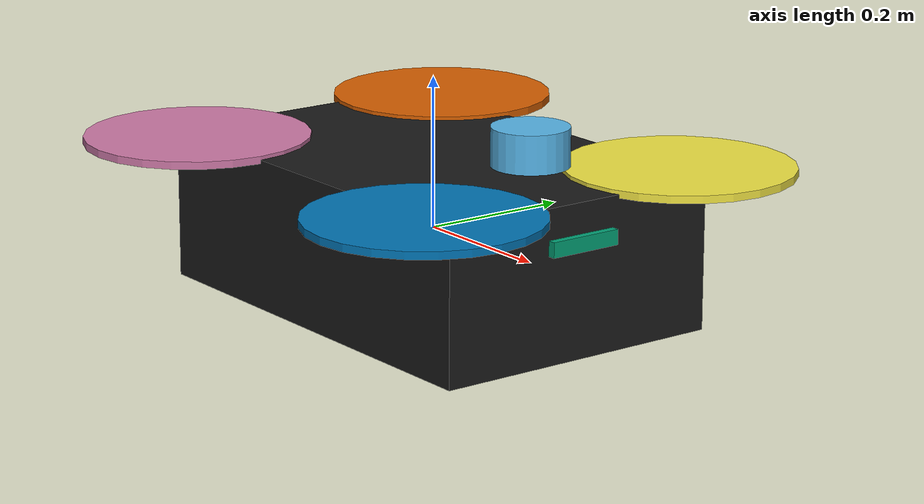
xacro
<?xml version="1.0"?>
<robot name="barak" xmlns:xacro="http://www.ros.org/wiki/xacro">

  <!-- Materials -->
  <material name="carbon_fiber">
    <color rgba="0.1 0.1 0.1 1.0"/>
  </material>

  <!-- Base Link -->
  <link name="base_link">
    <visual>
      <geometry>
        <box size="0.6 0.4 0.2"/>
      </geometry>
      <material name="carbon_fiber"/>
    </visual>
    <collision>
      <geometry>
        <box size="0.6 0.4 0.2"/>
      </geometry>
    </collision>
    <inertial>
      <mass value="5.0"/>
      <inertia ixx="0.08" ixy="0" ixz="0" iyy="0.16" iyz="0" izz="0.2"/>
    </inertial>
  </link>

  <!-- Sensors: LiDAR -->
  <link name="lidar_link">
    <visual>
      <geometry><cylinder radius="0.05" length="0.05"/></geometry>
    </visual>
  </link>
  <joint name="lidar_joint" type="fixed">
    <parent link="base_link"/>
    <child link="lidar_link"/>
    <origin xyz="0.2 0 0.15"/>
  </joint>

  <!-- Sensors: Camera -->
  <link name="camera_link">
    <visual>
      <geometry><box size="0.02 0.1 0.02"/></geometry>
    </visual>
  </link>
  <joint name="camera_joint" type="fixed">
    <parent link="base_link"/>
    <child link="camera_link"/>
    <origin xyz="0.3 0 0.05"/>
  </joint>

  <!-- Propeller Macro -->
  <xacro:macro name="propeller" params="name x y">
    <link name="${name}_prop">
      <visual>
        <geometry><cylinder radius="0.15" length="0.01"/></geometry>
      </visual>
    </link>
    <joint name="${name}_prop_joint" type="continuous">
      <parent link="base_link"/>
      <child link="${name}_prop"/>
      <origin xyz="${x} ${y} 0.1"/>
      <axis xyz="0 0 1"/>
    </joint>
  </xacro:macro>

  <xacro:propeller name="front_left" x="0.25" y="0.2"/>
  <xacro:propeller name="front_right" x="0.25" y="-0.2"/>
  <xacro:propeller name="back_left" x="-0.25" y="0.2"/>
  <xacro:propeller name="back_right" x="-0.25" y="-0.2"/>

  <!-- GAZEBO PLUGINS -->
  <gazebo reference="lidar_link">
    <sensor type="ray" name="ouster_lidar">
      <pose>0 0 0 0 0 0</pose>
      <visualize>false</visualize>
      <update_rate>10</update_rate>
      <ray>
        <scan>
          <horizontal><samples>360</samples><resolution>1</resolution><min_angle>-3.14</min_angle><max_angle>3.14</max_angle></horizontal>
        </scan>
        <range><min>0.1</min><max>120.0</max><resolution>0.01</resolution></range>
      </ray>
      <plugin name="gazebo_ros_lidar" filename="libgazebo_ros_ray_sensor.so">
        <ros><remapping>~/out:=/barak/scan</remapping></ros>
        <output_type>sensor_msgs/PointCloud2</output_type>
      </plugin>
    </sensor>
  </gazebo>

  <gazebo reference="camera_link">
    <sensor type="camera" name="realsense_camera">
      <update_rate>30.0</update_rate>
      <camera name="head">
        <horizontal_fov>1.3962634</horizontal_fov>
        <image><width>800</width><height>600</height><format>R8G8B8</format></image>
        <clip><near>0.02</near><far>300</far></clip>
      </camera>
      <plugin name="camera_controller" filename="libgazebo_ros_camera.so">
        <ros><remapping>~/image_raw:=/camera/image_raw</remapping></ros>
      </plugin>
    </sensor>
  </gazebo>

</robot>
